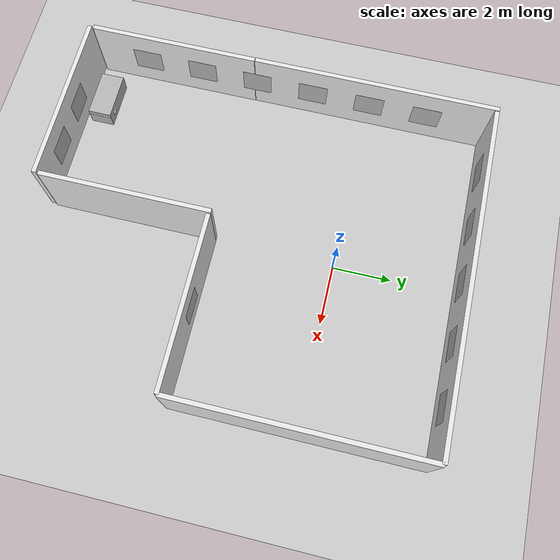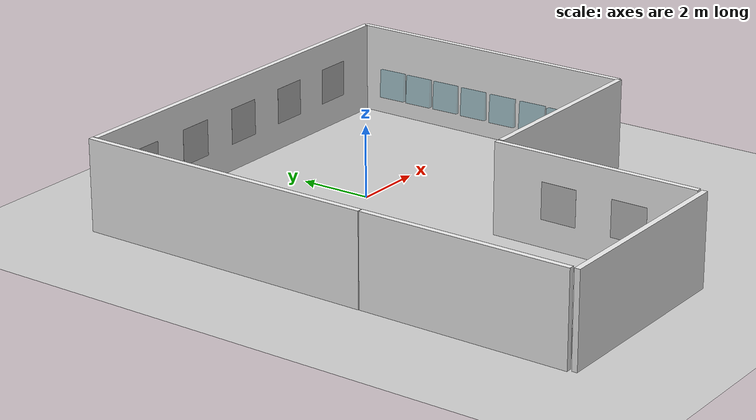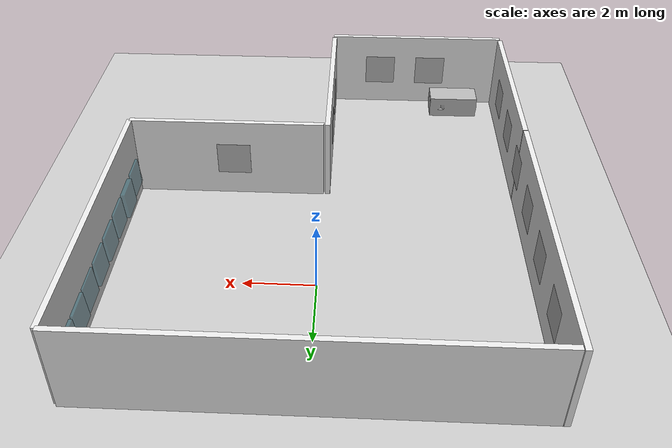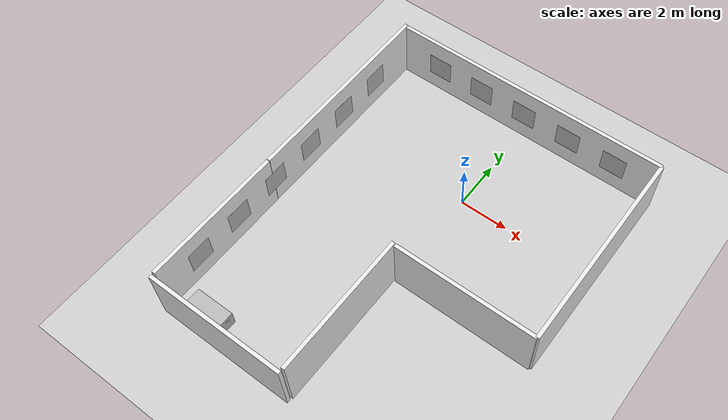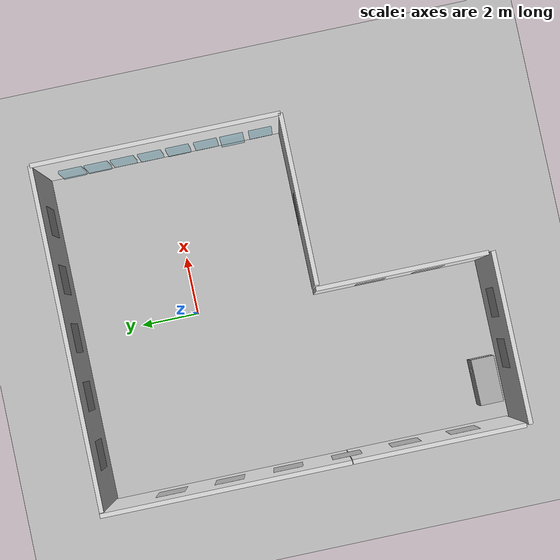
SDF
<sdf version="1.6">
 <world name="default">
  <model name="office_env_w2">
   <pose>0 4.162 1.25 0 -0 0</pose>
   <link name="Wall_10">
    <visual name="Wall_10_Visual_0">
     <geometry><box><size>11.466 0.15 2.5</size></box></geometry>
     <material>
      <script>
       <uri>model://office_env_w/materials/scripts</uri>
       <uri>model://office_env_w/materials/textures</uri>
       <name>wall_white</name>
      </script>
     </material>
     <meta><layer>0</layer></meta>
    </visual>
    <collision name="Wall_10_Collision_0"><geometry><box><size>11.466 0.15 2.5</size></box></geometry></collision>
   </link>
   <static>1</static>
  </model>
  <model name="office_env_w">
   <pose>5.733 0 1.25 0 -0 1.57</pose>
   <link name="Wall_10">
    <visual name="Wall_10_Visual_0">
     <geometry><box><size>8.324 0.15 2.5</size></box></geometry>
     <material>
      <script>
       <uri>model://office_env_w/materials/scripts</uri>
       <uri>model://office_env_w/materials/textures</uri>
       <name>wall_white</name>
      </script>
     </material>
     <meta><layer>0</layer></meta>
    </visual>
    <collision name="Wall_10_Collision_0"><geometry><box><size>8.324 0.15 2.5</size></box></geometry></collision>
   </link>
   <static>1</static>
  </model>
  <model name="office_env_w3">
   <pose>2.8655 -4.162 1.25 0 -0 0</pose>
   <link name="Wall_10">
    <visual name="Wall_10_Visual_0">
     <geometry><box><size>5.733 0.15 2.5</size></box></geometry>
     <material>
      <script>
       <uri>model://office_env_w/materials/scripts</uri>
       <uri>model://office_env_w/materials/textures</uri>
       <name>wall_white</name>
      </script>
     </material>
     <meta><layer>0</layer></meta>
    </visual>
    <collision name="Wall_10_Collision_0"><geometry><box><size>5.733 0.15 2.5</size></box></geometry></collision>
   </link>
   <static>1</static>
  </model>
  <model name="office_env_w3_clone">
   <pose>-0.116895 -6.96099 1.25 0 -0 1.57</pose>
   <link name="Wall_10">
    <visual name="Wall_10_Visual_0">
     <geometry><box><size>5.733 0.15 2.5</size></box></geometry>
     <material>
      <script>
       <uri>model://office_env_w/materials/scripts</uri>
       <uri>model://office_env_w/materials/textures</uri>
       <name>wall_white</name>
      </script>
     </material>
     <meta><layer>0</layer></meta>
    </visual>
    <collision name="Wall_10_Collision_0"><geometry><box><size>5.733 0.15 2.5</size></box></geometry></collision>
   </link>
   <static>1</static>
  </model>
  <model name="office_env_w_clone">
   <pose>-5.82948 0.079903 1.25 0 -0 1.57</pose>
   <link name="Wall_10">
    <visual name="Wall_10_Visual_0">
     <geometry><box><size>8.324 0.15 2.5</size></box></geometry>
     <material>
      <script>
       <uri>model://office_env_w/materials/scripts</uri>
       <uri>model://office_env_w/materials/textures</uri>
       <name>wall_white</name>
      </script>
     </material>
     <meta><layer>0</layer></meta>
    </visual>
    <collision name="Wall_10_Collision_0"><geometry><box><size>8.324 0.15 2.5</size></box></geometry></collision>
   </link>
   <static>1</static>
  </model>
  <model name="office_env_w3_clone_clone">
   <pose>-5.82704 -6.96526 1.25 0 -0 1.57</pose>
   <link name="Wall_10">
    <visual name="Wall_10_Visual_0">
     <geometry><box><size>5.733 0.15 2.5</size></box></geometry>
     <material>
      <script>
       <uri>model://office_env_w/materials/scripts</uri>
       <uri>model://office_env_w/materials/textures</uri>
       <name>wall_white</name>
      </script>
     </material>
     <meta><layer>0</layer></meta>
    </visual>
    <collision name="Wall_10_Collision_0"><geometry><box><size>5.733 0.15 2.5</size></box></geometry></collision>
   </link>
   <static>1</static>
  </model>
  <model name="office_env_w3_clone_0">
   <pose>-2.96341 -9.9742 1.25 0 -0 0</pose>
   <link name="Wall_10">
    <visual name="Wall_10_Visual_0">
     <geometry><box><size>5.733 0.15 2.5</size></box></geometry>
     <material>
      <script>
       <uri>model://office_env_w/materials/scripts</uri>
       <uri>model://office_env_w/materials/textures</uri>
       <name>wall_white</name>
      </script>
     </material>
     <meta><layer>0</layer></meta>
    </visual>
    <collision name="Wall_10_Collision_0"><geometry><box><size>5.733 0.15 2.5</size></box></geometry></collision>
   </link>
   <static>1</static>
  </model>
  <model name="window_3">
   <link name="link_2">
    <visual name="visual">
     <pose>0 0 0.9 0 -0 0</pose>
     <geometry><box><size>0.8 0.15 0.8</size></box></geometry>
     <material>
      <lighting>1</lighting>
      <ambient>0.1 0.5 0.6 1</ambient>
      <diffuse>0.1 0.5 0.6 1</diffuse>
      <specular>0.01 0.01 0.01 1</specular>
      <emissive>0 0 0 1</emissive>
     </material>
     <transparency>0.7</transparency>
    </visual>
    <collision name="collision">
     <pose>0 0 0.9 0 -0 0</pose>
     <geometry><box><size>0.8 0.15 0.8</size></box></geometry>
    </collision>
   </link>
   <static>1</static>
   <pose>5.55041 3.13004 -0.000428 0.072676 0.011663 1.57159</pose>
  </model>
  <model name="window_3_clone_clone">
   <link name="link_2">
    <visual name="visual">
     <pose>0 0 0.9 0 -0 0</pose>
     <geometry><box><size>0.8 0.15 0.8</size></box></geometry>
     <material>
      <lighting>1</lighting>
      <ambient>0.1 0.5 0.6 1</ambient>
      <diffuse>0.1 0.5 0.6 1</diffuse>
      <specular>0.01 0.01 0.01 1</specular>
      <emissive>0 0 0 1</emissive>
     </material>
     <transparency>0.7</transparency>
    </visual>
    <collision name="collision">
     <pose>0 0 0.9 0 -0 0</pose>
     <geometry><box><size>0.8 0.15 0.8</size></box></geometry>
    </collision>
   </link>
   <static>1</static>
   <pose>5.57835 0.394375 -0.000428 0.072676 0.011663 1.57159</pose>
  </model>
  <model name="window_3_clone_clone_0">
   <link name="link_2">
    <visual name="visual">
     <pose>0 0 0.9 0 -0 0</pose>
     <geometry><box><size>0.8 0.15 0.8</size></box></geometry>
     <material>
      <lighting>1</lighting>
      <ambient>0.1 0.5 0.6 1</ambient>
      <diffuse>0.1 0.5 0.6 1</diffuse>
      <specular>0.01 0.01 0.01 1</specular>
      <emissive>0 0 0 1</emissive>
     </material>
     <transparency>0.7</transparency>
    </visual>
    <collision name="collision">
     <pose>0 0 0.9 0 -0 0</pose>
     <geometry><box><size>0.8 0.15 0.8</size></box></geometry>
    </collision>
   </link>
   <static>1</static>
   <pose>5.57507 -1.53947 -0.000428 0.072676 0.011663 1.57159</pose>
  </model>
  <model name="window_3_clone_clone_1">
   <link name="link_2">
    <visual name="visual">
     <pose>0 0 0.9 0 -0 0</pose>
     <geometry><box><size>0.8 0.15 0.8</size></box></geometry>
     <material>
      <lighting>1</lighting>
      <ambient>0.1 0.5 0.6 1</ambient>
      <diffuse>0.1 0.5 0.6 1</diffuse>
      <specular>0.01 0.01 0.01 1</specular>
      <emissive>0 0 0 1</emissive>
     </material>
     <transparency>0.7</transparency>
    </visual>
    <collision name="collision">
     <pose>0 0 0.9 0 -0 0</pose>
     <geometry><box><size>0.8 0.15 0.8</size></box></geometry>
    </collision>
   </link>
   <static>1</static>
   <pose>5.57316 -3.44378 -0.000428 0.072676 0.011663 1.57159</pose>
  </model>
  <model name="window_3_clone_clone_2">
   <link name="link_2">
    <visual name="visual">
     <pose>0 0 0.9 0 -0 0</pose>
     <geometry><box><size>0.8 0.15 0.8</size></box></geometry>
     <material>
      <lighting>1</lighting>
      <ambient>0.1 0.5 0.6 1</ambient>
      <diffuse>0.1 0.5 0.6 1</diffuse>
      <specular>0.01 0.01 0.01 1</specular>
      <emissive>0 0 0 1</emissive>
     </material>
     <transparency>0.7</transparency>
    </visual>
    <collision name="collision">
     <pose>0 0 0.9 0 -0 0</pose>
     <geometry><box><size>0.8 0.15 0.8</size></box></geometry>
    </collision>
   </link>
   <static>1</static>
   <pose>5.51026 -2.44936 -0.000428 0.072676 0.011663 1.57159</pose>
  </model>
  <model name="window_3_clone_clone_3">
   <link name="link_2">
    <visual name="visual">
     <pose>0 0 0.9 0 -0 0</pose>
     <geometry><box><size>0.8 0.15 0.8</size></box></geometry>
     <material>
      <lighting>1</lighting>
      <ambient>0.1 0.5 0.6 1</ambient>
      <diffuse>0.1 0.5 0.6 1</diffuse>
      <specular>0.01 0.01 0.01 1</specular>
      <emissive>0 0 0 1</emissive>
     </material>
     <transparency>0.7</transparency>
    </visual>
    <collision name="collision">
     <pose>0 0 0.9 0 -0 0</pose>
     <geometry><box><size>0.8 0.15 0.8</size></box></geometry>
    </collision>
   </link>
   <static>1</static>
   <pose>5.56777 -0.565762 -0.000428 0.072676 0.011663 1.57159</pose>
  </model>
  <model name="window_3_clone_clone_4">
   <link name="link_2">
    <visual name="visual">
     <pose>0 0 0.9 0 -0 0</pose>
     <geometry><box><size>0.8 0.15 0.8</size></box></geometry>
     <material>
      <lighting>1</lighting>
      <ambient>0.1 0.5 0.6 1</ambient>
      <diffuse>0.1 0.5 0.6 1</diffuse>
      <specular>0.01 0.01 0.01 1</specular>
      <emissive>0 0 0 1</emissive>
     </material>
     <transparency>0.7</transparency>
    </visual>
    <collision name="collision">
     <pose>0 0 0.9 0 -0 0</pose>
     <geometry><box><size>0.8 0.15 0.8</size></box></geometry>
    </collision>
   </link>
   <static>1</static>
   <pose>5.59135 1.3384 -0.000428 0.072676 0.011663 1.57159</pose>
  </model>
  <model name="window_3_clone_clone_5">
   <link name="link_2">
    <visual name="visual">
     <pose>0 0 0.9 0 -0 0</pose>
     <geometry><box><size>0.8 0.15 0.8</size></box></geometry>
     <material>
      <lighting>1</lighting>
      <ambient>0.1 0.5 0.6 1</ambient>
      <diffuse>0.1 0.5 0.6 1</diffuse>
      <specular>0.01 0.01 0.01 1</specular>
      <emissive>0 0 0 1</emissive>
     </material>
     <transparency>0.7</transparency>
    </visual>
    <collision name="collision">
     <pose>0 0 0.9 0 -0 0</pose>
     <geometry><box><size>0.8 0.15 0.8</size></box></geometry>
    </collision>
   </link>
   <static>1</static>
   <pose>5.56149 2.2418 -0.000428 0.072676 0.011663 1.57159</pose>
  </model>
  <model name="neobotix_wall_stickers">
   <static>1</static>
   <link name="link">
    <collision name="collision">
     <geometry><plane><normal>0 0 1</normal><size>1 1</size></plane></geometry>
     <surface><friction><ode><mu>100</mu><mu2>50</mu2></ode></friction></surface>
    </collision>
    <visual name="visual">
     <cast_shadows>0</cast_shadows>
     <geometry><plane><normal>0 0 1</normal><size>1 1</size></plane></geometry>
     <material>
      <script>
       <uri>model://neobotix_wall_stickers/materials/scripts</uri>
       <uri>model://neobotix_wall_stickers/materials/textures/</uri>
       <name>NeobotixGroundPlane/Image</name>
      </script>
     </material>
    </visual>
   </link>
   <pose>0 4.07 1.25 1.57 -0 0</pose>
  </model>
  <model name="neobotix_wall_stickers_0">
   <static>1</static>
   <link name="link">
    <collision name="collision">
     <geometry><plane><normal>0 0 1</normal><size>1 1</size></plane></geometry>
     <surface><friction><ode><mu>100</mu><mu2>50</mu2></ode></friction></surface>
    </collision>
    <visual name="visual">
     <cast_shadows>0</cast_shadows>
     <geometry><plane><normal>0 0 1</normal><size>1 1</size></plane></geometry>
     <material>
      <script>
       <uri>model://neobotix_wall_stickers/materials/scripts</uri>
       <uri>model://neobotix_wall_stickers/materials/textures/</uri>
       <name>NeobotixGroundPlane/Image</name>
      </script>
     </material>
    </visual>
   </link>
   <pose>-2 4.07 1.25 1.57 -0 0</pose>
  </model>
  <model name="neobotix_wall_stickers_1">
   <static>1</static>
   <link name="link">
    <collision name="collision">
     <geometry><plane><normal>0 0 1</normal><size>1 1</size></plane></geometry>
     <surface><friction><ode><mu>100</mu><mu2>50</mu2></ode></friction></surface>
    </collision>
    <visual name="visual">
     <cast_shadows>0</cast_shadows>
     <geometry><plane><normal>0 0 1</normal><size>1 1</size></plane></geometry>
     <material>
      <script>
       <uri>model://neobotix_wall_stickers/materials/scripts</uri>
       <uri>model://neobotix_wall_stickers/materials/textures/</uri>
       <name>NeobotixGroundPlane/Image</name>
      </script>
     </material>
    </visual>
   </link>
   <pose>-4 4.07 1.25 1.57 -0 0</pose>
  </model>
  <model name="neobotix_wall_stickers_2">
   <static>1</static>
   <link name="link">
    <collision name="collision">
     <geometry><plane><normal>0 0 1</normal><size>1 1</size></plane></geometry>
     <surface><friction><ode><mu>100</mu><mu2>50</mu2></ode></friction></surface>
    </collision>
    <visual name="visual">
     <cast_shadows>0</cast_shadows>
     <geometry><plane><normal>0 0 1</normal><size>1 1</size></plane></geometry>
     <material>
      <script>
       <uri>model://neobotix_wall_stickers/materials/scripts</uri>
       <uri>model://neobotix_wall_stickers/materials/textures/</uri>
       <name>NeobotixGroundPlane/Image</name>
      </script>
     </material>
    </visual>
   </link>
   <pose>2 4.07 1.25 1.57 -0 0</pose>
  </model>
  <model name="neobotix_wall_stickers_3">
   <static>1</static>
   <link name="link">
    <collision name="collision">
     <geometry><plane><normal>0 0 1</normal><size>1 1</size></plane></geometry>
     <surface><friction><ode><mu>100</mu><mu2>50</mu2></ode></friction></surface>
    </collision>
    <visual name="visual">
     <cast_shadows>0</cast_shadows>
     <geometry><plane><normal>0 0 1</normal><size>1 1</size></plane></geometry>
     <material>
      <script>
       <uri>model://neobotix_wall_stickers/materials/scripts</uri>
       <uri>model://neobotix_wall_stickers/materials/textures/</uri>
       <name>NeobotixGroundPlane/Image</name>
      </script>
     </material>
    </visual>
   </link>
   <pose>4 4.07 1.25 1.57 -0 0</pose>
  </model>
  <model name="neobotix_wall_stickers_4">
   <static>1</static>
   <link name="link">
    <collision name="collision">
     <geometry><plane><normal>0 0 1</normal><size>1 1</size></plane></geometry>
     <surface><friction><ode><mu>100</mu><mu2>50</mu2></ode></friction></surface>
    </collision>
    <visual name="visual">
     <cast_shadows>0</cast_shadows>
     <geometry><plane><normal>0 0 1</normal><size>1 1</size></plane></geometry>
     <material>
      <script>
       <uri>model://neobotix_wall_stickers/materials/scripts</uri>
       <uri>model://neobotix_wall_stickers/materials/textures/</uri>
       <name>NeobotixGroundPlane/Image</name>
      </script>
     </material>
    </visual>
   </link>
   <pose>2.7 -4.07 1.25 1.57159 0.001593 3.14159</pose>
  </model>
  <model name="neobotix_wall_stickers_5">
   <static>1</static>
   <link name="link">
    <collision name="collision">
     <geometry><plane><normal>0 0 1</normal><size>1 1</size></plane></geometry>
     <surface><friction><ode><mu>100</mu><mu2>50</mu2></ode></friction></surface>
    </collision>
    <visual name="visual">
     <cast_shadows>0</cast_shadows>
     <geometry><plane><normal>0 0 1</normal><size>1 1</size></plane></geometry>
     <material>
      <script>
       <uri>model://neobotix_wall_stickers/materials/scripts</uri>
       <uri>model://neobotix_wall_stickers/materials/textures/</uri>
       <name>NeobotixGroundPlane/Image</name>
      </script>
     </material>
    </visual>
   </link>
   <pose>-5.732 0 1.25 1.57 -0 1.57</pose>
  </model>
  <model name="neobotix_wall_stickers_6">
   <static>1</static>
   <link name="link">
    <collision name="collision">
     <geometry><plane><normal>0 0 1</normal><size>1 1</size></plane></geometry>
     <surface><friction><ode><mu>100</mu><mu2>50</mu2></ode></friction></surface>
    </collision>
    <visual name="visual">
     <cast_shadows>0</cast_shadows>
     <geometry><plane><normal>0 0 1</normal><size>1 1</size></plane></geometry>
     <material>
      <script>
       <uri>model://neobotix_wall_stickers/materials/scripts</uri>
       <uri>model://neobotix_wall_stickers/materials/textures/</uri>
       <name>NeobotixGroundPlane/Image</name>
      </script>
     </material>
    </visual>
   </link>
   <pose>-5.732 -2 1.25 1.57 -0 1.57</pose>
  </model>
  <model name="neobotix_wall_stickers_7">
   <static>1</static>
   <link name="link">
    <collision name="collision">
     <geometry><plane><normal>0 0 1</normal><size>1 1</size></plane></geometry>
     <surface><friction><ode><mu>100</mu><mu2>50</mu2></ode></friction></surface>
    </collision>
    <visual name="visual">
     <cast_shadows>0</cast_shadows>
     <geometry><plane><normal>0 0 1</normal><size>1 1</size></plane></geometry>
     <material>
      <script>
       <uri>model://neobotix_wall_stickers/materials/scripts</uri>
       <uri>model://neobotix_wall_stickers/materials/textures/</uri>
       <name>NeobotixGroundPlane/Image</name>
      </script>
     </material>
    </visual>
   </link>
   <pose>-5.732 2 1.25 1.57 -0 1.57</pose>
  </model>
  <model name="neobotix_wall_stickers_8">
   <static>1</static>
   <link name="link">
    <collision name="collision">
     <geometry><plane><normal>0 0 1</normal><size>1 1</size></plane></geometry>
     <surface><friction><ode><mu>100</mu><mu2>50</mu2></ode></friction></surface>
    </collision>
    <visual name="visual">
     <cast_shadows>0</cast_shadows>
     <geometry><plane><normal>0 0 1</normal><size>1 1</size></plane></geometry>
     <material>
      <script>
       <uri>model://neobotix_wall_stickers/materials/scripts</uri>
       <uri>model://neobotix_wall_stickers/materials/textures/</uri>
       <name>NeobotixGroundPlane/Image</name>
      </script>
     </material>
    </visual>
   </link>
   <pose>-5.732 -4 1.25 1.57 -0 1.57</pose>
  </model>
  <model name="neobotix_wall_stickers_9">
   <static>1</static>
   <link name="link">
    <collision name="collision">
     <geometry><plane><normal>0 0 1</normal><size>1 1</size></plane></geometry>
     <surface><friction><ode><mu>100</mu><mu2>50</mu2></ode></friction></surface>
    </collision>
    <visual name="visual">
     <cast_shadows>0</cast_shadows>
     <geometry><plane><normal>0 0 1</normal><size>1 1</size></plane></geometry>
     <material>
      <script>
       <uri>model://neobotix_wall_stickers/materials/scripts</uri>
       <uri>model://neobotix_wall_stickers/materials/textures/</uri>
       <name>NeobotixGroundPlane/Image</name>
      </script>
     </material>
    </visual>
   </link>
   <pose>-5.732 -6 1.25 1.57 -0 1.57</pose>
  </model>
  <model name="neobotix_wall_stickers_10">
   <static>1</static>
   <link name="link">
    <collision name="collision">
     <geometry><plane><normal>0 0 1</normal><size>1 1</size></plane></geometry>
     <surface><friction><ode><mu>100</mu><mu2>50</mu2></ode></friction></surface>
    </collision>
    <visual name="visual">
     <cast_shadows>0</cast_shadows>
     <geometry><plane><normal>0 0 1</normal><size>1 1</size></plane></geometry>
     <material>
      <script>
       <uri>model://neobotix_wall_stickers/materials/scripts</uri>
       <uri>model://neobotix_wall_stickers/materials/textures/</uri>
       <name>NeobotixGroundPlane/Image</name>
      </script>
     </material>
    </visual>
   </link>
   <pose>-5.732 -8 1.25 1.57 -0 1.57</pose>
  </model>
  <model name="neobotix_wall_stickers_11">
   <static>1</static>
   <link name="link">
    <collision name="collision">
     <geometry><plane><normal>0 0 1</normal><size>1 1</size></plane></geometry>
     <surface><friction><ode><mu>100</mu><mu2>50</mu2></ode></friction></surface>
    </collision>
    <visual name="visual">
     <cast_shadows>0</cast_shadows>
     <geometry><plane><normal>0 0 1</normal><size>1 1</size></plane></geometry>
     <material>
      <script>
       <uri>model://neobotix_wall_stickers/materials/scripts</uri>
       <uri>model://neobotix_wall_stickers/materials/textures/</uri>
       <name>NeobotixGroundPlane/Image</name>
      </script>
     </material>
    </visual>
   </link>
   <pose>-0.2 -8 1.25 1.57159 0.001593 -1.57159</pose>
  </model>
  <model name="neobotix_wall_stickers_12">
   <static>1</static>
   <link name="link">
    <collision name="collision">
     <geometry><plane><normal>0 0 1</normal><size>1 1</size></plane></geometry>
     <surface><friction><ode><mu>100</mu><mu2>50</mu2></ode></friction></surface>
    </collision>
    <visual name="visual">
     <cast_shadows>0</cast_shadows>
     <geometry><plane><normal>0 0 1</normal><size>1 1</size></plane></geometry>
     <material>
      <script>
       <uri>model://neobotix_wall_stickers/materials/scripts</uri>
       <uri>model://neobotix_wall_stickers/materials/textures/</uri>
       <name>NeobotixGroundPlane/Image</name>
      </script>
     </material>
    </visual>
   </link>
   <pose>-0.2 -6 1.25 1.57159 0.001593 -1.57159</pose>
  </model>
  <model name="neobotix_wall_stickers_13">
   <static>1</static>
   <link name="link">
    <collision name="collision">
     <geometry><plane><normal>0 0 1</normal><size>1 1</size></plane></geometry>
     <surface><friction><ode><mu>100</mu><mu2>50</mu2></ode></friction></surface>
    </collision>
    <visual name="visual">
     <cast_shadows>0</cast_shadows>
     <geometry><plane><normal>0 0 1</normal><size>1 1</size></plane></geometry>
     <material>
      <script>
       <uri>model://neobotix_wall_stickers/materials/scripts</uri>
       <uri>model://neobotix_wall_stickers/materials/textures/</uri>
       <name>NeobotixGroundPlane/Image</name>
      </script>
     </material>
    </visual>
   </link>
   <pose>-1.7445 -9.89 1.25 1.57159 0.001593 3.14159</pose>
  </model>
  <model name="neobotix_wall_stickers_14">
   <static>1</static>
   <link name="link">
    <collision name="collision">
     <geometry><plane><normal>0 0 1</normal><size>1 1</size></plane></geometry>
     <surface><friction><ode><mu>100</mu><mu2>50</mu2></ode></friction></surface>
    </collision>
    <visual name="visual">
     <cast_shadows>0</cast_shadows>
     <geometry><plane><normal>0 0 1</normal><size>1 1</size></plane></geometry>
     <material>
      <script>
       <uri>model://neobotix_wall_stickers/materials/scripts</uri>
       <uri>model://neobotix_wall_stickers/materials/textures/</uri>
       <name>NeobotixGroundPlane/Image</name>
      </script>
     </material>
    </visual>
   </link>
   <pose>-3.489 -9.89 1.25 1.57 -0 -3.14</pose>
  </model>
  <model name="Construction Cone_clone">
   <link name="link">
    <collision name="collision">
     <geometry><mesh><scale>1 1 1</scale><uri>model://docker/meshes/untitled.dae</uri></mesh></geometry>
    </collision>
    <visual name="visual">
     <geometry><mesh><scale>1 1 1</scale><uri>model://docker/meshes/untitled.dae</uri></mesh></geometry>
    </visual>
    <inertial>
     <inertia><ixx>1</ixx><ixy>0</ixy><ixz>0</ixz><iyy>1</iyy><iyz>0</iyz><izz>1</izz></inertia>
     <mass>1</mass>
    </inertial>
   </link>
   <pose>-4.340617 -9.291543 0 0 -0 1.5732</pose>
  </model>
  <model name="neobotix_ground_plane">
   <static>1</static>
   <link name="link">
    <collision name="collision">
     <geometry><plane><normal>0 0 1</normal><size>100 100</size></plane></geometry>
     <surface><friction><ode><mu>100</mu><mu2>50</mu2></ode></friction></surface>
    </collision>
    <visual name="visual">
     <cast_shadows>0</cast_shadows>
     <geometry><plane><normal>0 0 1</normal><size>100 100</size></plane></geometry>
     <material>
      <script>
       <uri>model://neobotix_ground_plane/materials/scripts</uri>
       <uri>model://neobotix_ground_plane/materials/textures/</uri>
       <name>NeobotixGroundPlane/Image</name>
      </script>
     </material>
    </visual>
   </link>
   <pose>15.6163 -0.783534 0 0 -0 0</pose>
  </model>
  <model name="docker">
   <pose>-4.5463 -2.89682 0.451768 -1.57939 0.005995 -1.6128</pose>
   <scale>1 1 1</scale>
   <link name="link_1">
    <pose>-4.5463 -2.89682 0.451768 -1.57939 0.005995 -1.6128</pose>
    <velocity>0 0 0 0 -0 0</velocity>
    <acceleration>0 0 0 0 -0 0</acceleration>
    <wrench>0 0 0 0 -0 0</wrench>
   </link>
  </model>
 </world>
</sdf>
